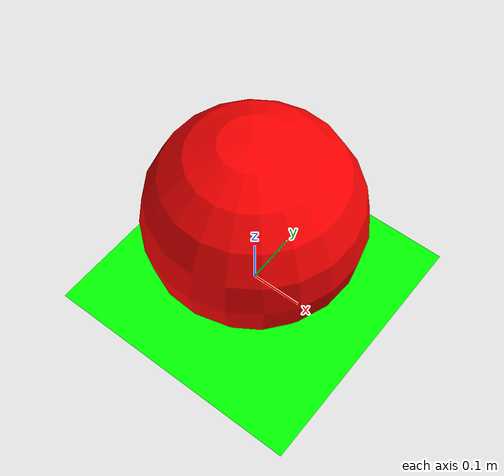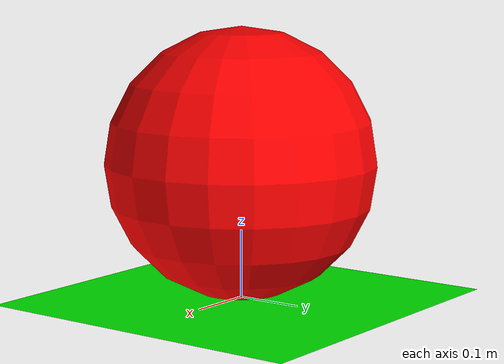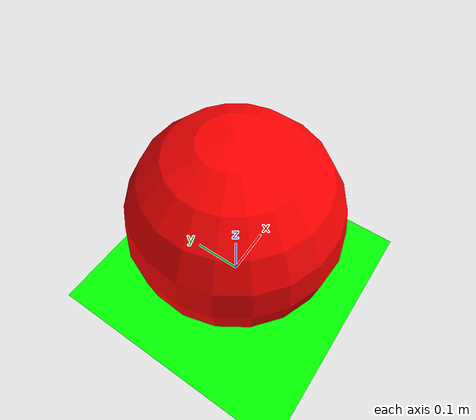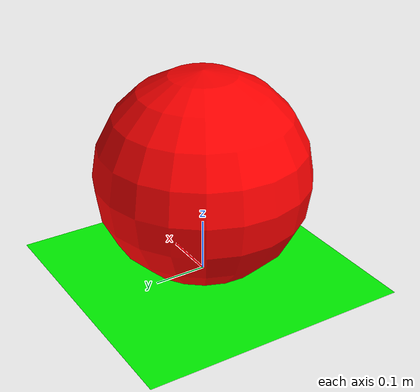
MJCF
<mujoco>
<worldbody>
    <light name="top" pos="0 0 1"/>
    <body name="box" pos="0 0 0.2" euler="0 0 -30">
        <joint name="slide_x" type="slide" axis="1 0 0" pos="0 0 0"/>
        <joint name="slide_y" type="slide" axis="0 1 0" pos="0 0 0"/>
        <geom name="red_box" type="sphere" size=".2" rgba="1 0 0 1"/>
    </body>
    <body name="floor" pos="0 0 0">
        <geom name="floor" type="plane" size="100 100 .1" rgba="0 1 0 1"/>
    </body>
</worldbody>
<actuator>
    <motor gear="1" joint="slide_x" name="slide_x"/>
    <motor gear="1" joint="slide_y" name="slide_y"/>
</actuator>
</mujoco>
